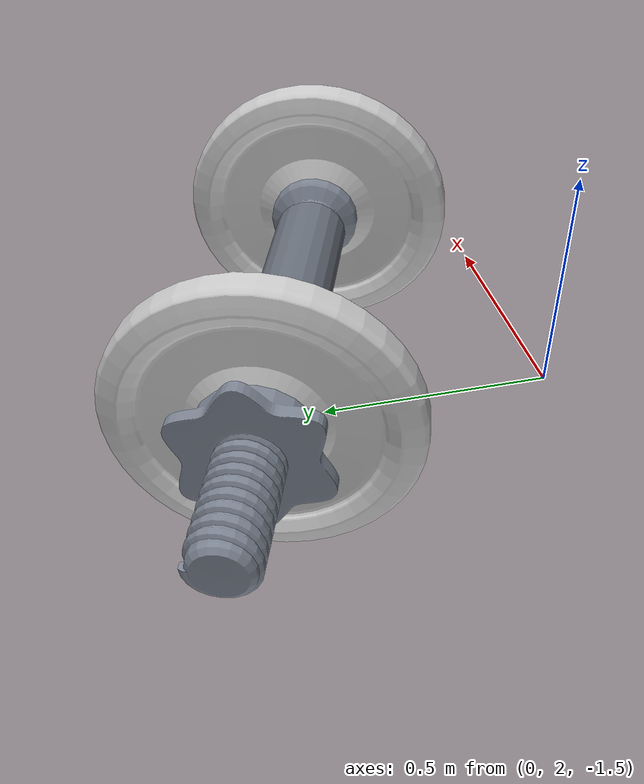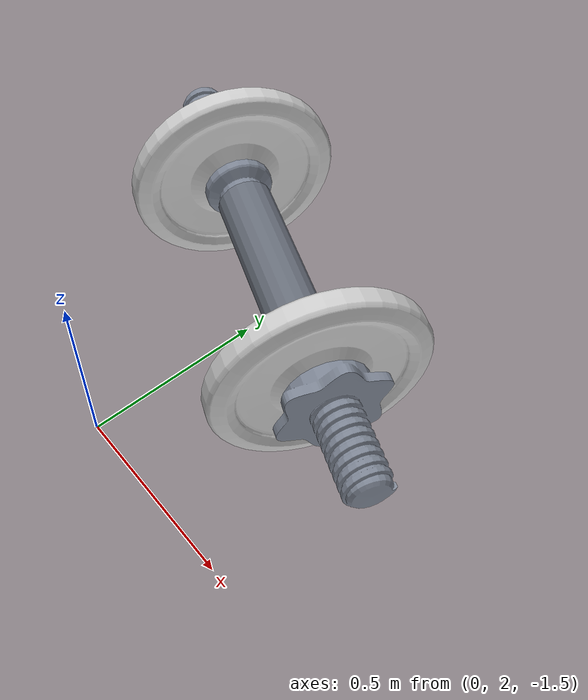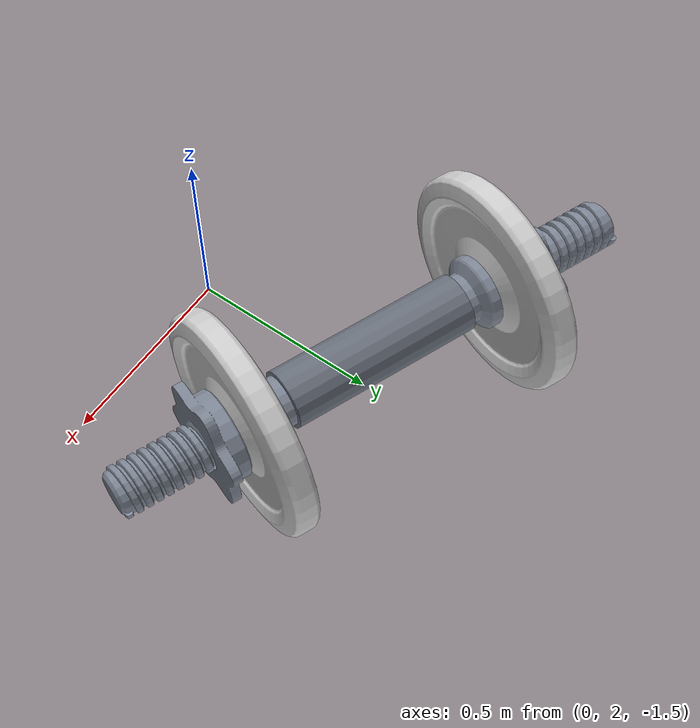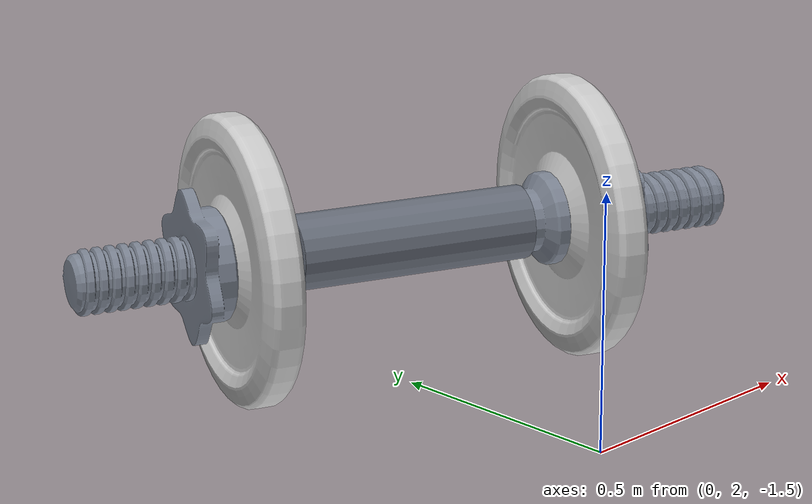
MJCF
<mujoco model="weight_6">
  <compiler angle="radian" meshdir="assets" texturedir="assets" autolimits="true"/>
  <default>
    <default class="visual">
      <geom group="2" type="mesh" contype="0" conaffinity="0"/>
    </default>
    <default class="collision">
      <geom group="3" type="mesh"  solimp="0.95 0.99 0.001" solref="0.004 1" friction="1.0 0.005 0.0001"/>
    </default>
  </default>
  <asset>
    <material name="Metal_black" specular="0.5" shininess="0.36" rgba="0.800000 0.800000 0.800000 1.000000"/>
    <material name="Stainless_Steel" specular="0.5" shininess="0.7225" rgba="0.492784 0.524263 0.580810 1.000000"/>
    <material name="Stainless_Steel_grip" specular="0.5" shininess="0.49" rgba="0.407240 0.433089 0.479510 1.000000"/>
    <mesh file="weight_6_0.obj"/>
    <mesh file="weight_6_1.obj"/>
    <mesh file="weight_6_2.obj"/>
    <mesh file="weight_6_collision_0.obj"/>
    <mesh file="weight_6_collision_1.obj"/>
    <mesh file="weight_6_collision_2.obj"/>
    <mesh file="weight_6_collision_3.obj"/>
    <mesh file="weight_6_collision_4.obj"/>
    <mesh file="weight_6_collision_5.obj"/>
    <mesh file="weight_6_collision_6.obj"/>
    <mesh file="weight_6_collision_7.obj"/>
    <mesh file="weight_6_collision_8.obj"/>
    <mesh file="weight_6_collision_9.obj"/>
    <mesh file="weight_6_collision_10.obj"/>
    <mesh file="weight_6_collision_11.obj"/>
    <mesh file="weight_6_collision_12.obj"/>
    <mesh file="weight_6_collision_13.obj"/>
    <mesh file="weight_6_collision_14.obj"/>
    <mesh file="weight_6_collision_15.obj"/>
    <mesh file="weight_6_collision_16.obj"/>
    <mesh file="weight_6_collision_17.obj"/>
    <mesh file="weight_6_collision_18.obj"/>
    <mesh file="weight_6_collision_19.obj"/>
    <mesh file="weight_6_collision_20.obj"/>
    <mesh file="weight_6_collision_21.obj"/>
    <mesh file="weight_6_collision_22.obj"/>
    <mesh file="weight_6_collision_23.obj"/>
    <mesh file="weight_6_collision_24.obj"/>
    <mesh file="weight_6_collision_25.obj"/>
    <mesh file="weight_6_collision_26.obj"/>
    <mesh file="weight_6_collision_27.obj"/>
    <mesh file="weight_6_collision_28.obj"/>
    <mesh file="weight_6_collision_29.obj"/>
    <mesh file="weight_6_collision_30.obj"/>
    <mesh file="weight_6_collision_31.obj"/>
    <mesh file="weight_6_collision_32.obj"/>
    <mesh file="weight_6_collision_33.obj"/>
    <mesh file="weight_6_collision_34.obj"/>
    <mesh file="weight_6_collision_35.obj"/>
    <mesh file="weight_6_collision_36.obj"/>
    <mesh file="weight_6_collision_37.obj"/>
    <mesh file="weight_6_collision_38.obj"/>
    <mesh file="weight_6_collision_39.obj"/>
    <mesh file="weight_6_collision_40.obj"/>
    <mesh file="weight_6_collision_41.obj"/>
  </asset>
  <worldbody>
    <body name="weight_6">
      <geom mesh="weight_6_0" material="Stainless_Steel_grip" class="visual"/>
      <geom mesh="weight_6_1" material="Metal_black" class="visual"/>
      <geom mesh="weight_6_2" material="Stainless_Steel" class="visual"/>
      <geom mesh="weight_6_collision_0" rgba="0.7150212332941069 0.295826775891472 0.5902330265056431 1" class="collision"/>
      <geom mesh="weight_6_collision_1" rgba="0.21667006546573753 0.5886919187765509 0.10474999883418756 1" class="collision"/>
      <geom mesh="weight_6_collision_2" rgba="0.13118581622252024 0.9111015776238472 0.6981753023216246 1" class="collision"/>
      <geom mesh="weight_6_collision_3" rgba="0.0649009509843318 0.6347767022083085 0.760854430897016 1" class="collision"/>
      <geom mesh="weight_6_collision_4" rgba="0.2888443655780796 0.6322778300389864 0.9507087807694157 1" class="collision"/>
      <geom mesh="weight_6_collision_5" rgba="0.645794174628172 0.26170095437093677 0.12013319335556649 1" class="collision"/>
      <geom mesh="weight_6_collision_6" rgba="0.3506657454194715 0.8284112358452513 0.3323181303039803 1" class="collision"/>
      <geom mesh="weight_6_collision_7" rgba="0.44604162320601237 0.5221054639798142 0.14228633380660105 1" class="collision"/>
      <geom mesh="weight_6_collision_8" rgba="0.49238676146894256 0.42960726881860534 0.8483558900516163 1" class="collision"/>
      <geom mesh="weight_6_collision_9" rgba="0.6730684913176807 0.2899751221655571 0.7132244908936507 1" class="collision"/>
      <geom mesh="weight_6_collision_10" rgba="0.36035185376880174 0.5135478205048519 0.48248647533121825 1" class="collision"/>
      <geom mesh="weight_6_collision_11" rgba="0.6447959503402063 0.603457058310067 0.21098653123733146 1" class="collision"/>
      <geom mesh="weight_6_collision_12" rgba="0.6041468458522202 0.4457461321930021 0.39102832601682436 1" class="collision"/>
      <geom mesh="weight_6_collision_13" rgba="0.17863882432568634 0.7367964181710573 0.4594108674013093 1" class="collision"/>
      <geom mesh="weight_6_collision_14" rgba="0.7698382168532376 0.6940734271859319 0.044290694220697646 1" class="collision"/>
      <geom mesh="weight_6_collision_15" rgba="0.6444377065285813 0.8358634666246313 0.38699879833792417 1" class="collision"/>
      <geom mesh="weight_6_collision_16" rgba="0.9765212825329251 0.17928209331880807 0.19470921084006731 1" class="collision"/>
      <geom mesh="weight_6_collision_17" rgba="0.3781936912783941 0.7944395458835661 0.7963308231062146 1" class="collision"/>
      <geom mesh="weight_6_collision_18" rgba="0.05992297384516476 0.6026576285639755 0.21807207467888834 1" class="collision"/>
      <geom mesh="weight_6_collision_19" rgba="0.60906228959703 0.16497598115110446 0.7839370564080671 1" class="collision"/>
      <geom mesh="weight_6_collision_20" rgba="0.21667250576313357 0.4428786553777131 0.4556477868869456 1" class="collision"/>
      <geom mesh="weight_6_collision_21" rgba="0.23970690077856194 0.24446265139263734 0.13202982689393294 1" class="collision"/>
      <geom mesh="weight_6_collision_22" rgba="0.6160073081724531 0.7979474611796368 0.47560748043123247 1" class="collision"/>
      <geom mesh="weight_6_collision_23" rgba="0.9000304698879014 0.6856429821565515 0.5720390218536108 1" class="collision"/>
      <geom mesh="weight_6_collision_24" rgba="0.25597215623564806 0.22974417035277228 0.8043301236601653 1" class="collision"/>
      <geom mesh="weight_6_collision_25" rgba="0.27872884313789603 0.8684412408301713 0.7471828390385032 1" class="collision"/>
      <geom mesh="weight_6_collision_26" rgba="0.3483591070020632 0.08428443649666217 0.9937807926399074 1" class="collision"/>
      <geom mesh="weight_6_collision_27" rgba="0.20682047171501472 0.33688965213940414 0.08469467235587347 1" class="collision"/>
      <geom mesh="weight_6_collision_28" rgba="0.9103190179958133 0.6984012496414455 0.4308528873484514 1" class="collision"/>
      <geom mesh="weight_6_collision_29" rgba="0.4154359565855893 0.7761002726693982 0.6266075571378938 1" class="collision"/>
      <geom mesh="weight_6_collision_30" rgba="0.40063858065139757 0.1490746261717658 0.8915174252238267 1" class="collision"/>
      <geom mesh="weight_6_collision_31" rgba="0.04541774218803474 0.9755652321172477 0.590488304405898 1" class="collision"/>
      <geom mesh="weight_6_collision_32" rgba="0.14733817785870762 0.22267491801104078 0.24987252775676005 1" class="collision"/>
      <geom mesh="weight_6_collision_33" rgba="0.5793413167104465 0.6234464653274233 0.6470623027708198 1" class="collision"/>
      <geom mesh="weight_6_collision_34" rgba="0.2991376646857853 0.5293010501631161 0.8371363984059832 1" class="collision"/>
      <geom mesh="weight_6_collision_35" rgba="0.9993869727246649 0.34132331689820405 0.16147450025885757 1" class="collision"/>
      <geom mesh="weight_6_collision_36" rgba="0.36963834884665037 0.1812799430352311 0.7590645133328321 1" class="collision"/>
      <geom mesh="weight_6_collision_37" rgba="0.17504696553771848 0.5128695388875779 0.4925686021071889 1" class="collision"/>
      <geom mesh="weight_6_collision_38" rgba="0.1801678664797245 0.3510106960890932 0.2994734906926849 1" class="collision"/>
      <geom mesh="weight_6_collision_39" rgba="0.8473816341579083 0.07637678219585153 0.8492933348823988 1" class="collision"/>
      <geom mesh="weight_6_collision_40" rgba="0.9229622531950074 0.9896980295296484 0.5813328814850566 1" class="collision"/>
      <geom mesh="weight_6_collision_41" rgba="0.9347727028271163 0.7461717169371407 0.0924344222829212 1" class="collision"/>
    </body>
  </worldbody>
</mujoco>
